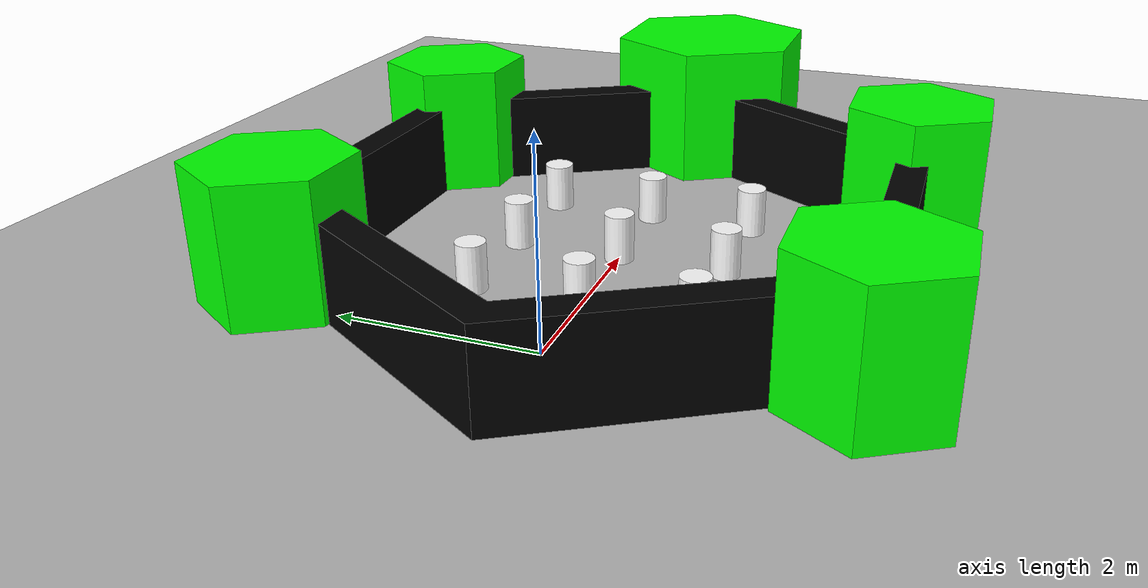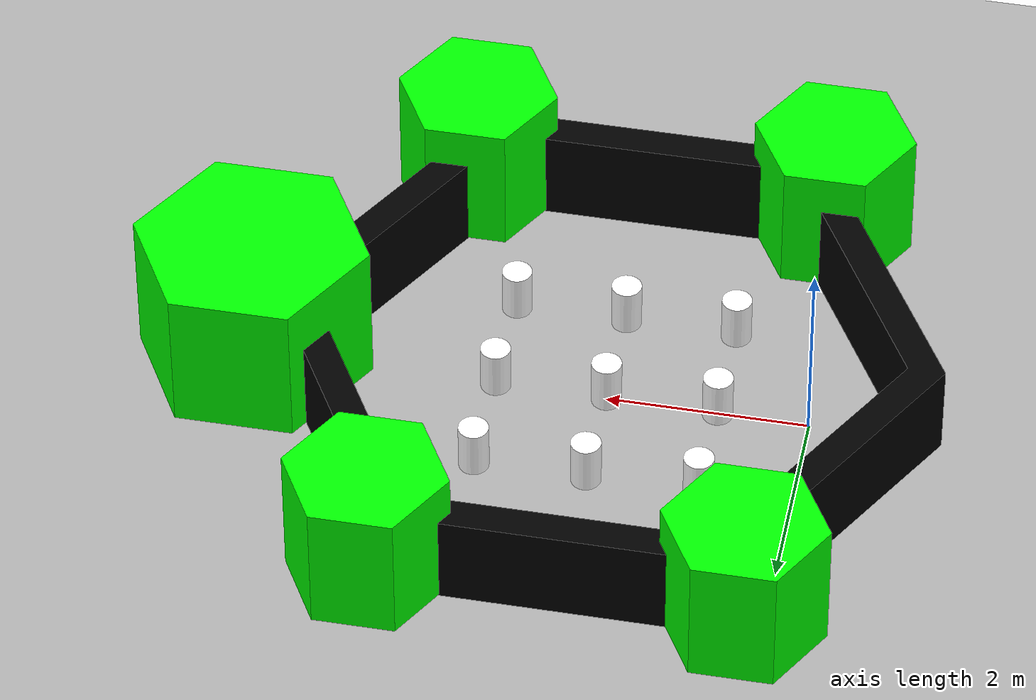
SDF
<sdf version='1.10'>
  <world name='default'>
    <physics type='ode'>
      <real_time_update_rate>1000</real_time_update_rate>
      <max_step_size>0.001</max_step_size>
      <real_time_factor>1</real_time_factor>
      <ode>
        <solver>
          <type>quick</type>
          <iters>150</iters>
          <precon_iters>0</precon_iters>
          <sor>1.3999999999999999</sor>
          <use_dynamic_moi_rescaling>true</use_dynamic_moi_rescaling>
        </solver>
        <constraints>
          <cfm>1.0000000000000001e-05</cfm>
          <erp>0.20000000000000001</erp>
          <contact_max_correcting_vel>2000</contact_max_correcting_vel>
          <contact_surface_layer>0.01</contact_surface_layer>
        </constraints>
      </ode>
    </physics>
    <plugin name='gz::sim::systems::Physics' filename='gz-sim-physics-system'/>
    <plugin name='gz::sim::systems::UserCommands' filename='gz-sim-user-commands-system'/>
    <plugin name='gz::sim::systems::SceneBroadcaster' filename='gz-sim-scene-broadcaster-system'/>
    <plugin name='gz::sim::systems::Sensors' filename='gz-sim-sensors-system'>
      <render_engine>ogre2</render_engine>
    </plugin>
    <plugin name='gz::sim::systems::Imu' filename='gz-sim-imu-system'/>
    <gravity>0 0 -9.8000000000000007</gravity>
    <magnetic_field>5.5644999999999998e-06 2.2875799999999999e-05 -4.2388400000000002e-05</magnetic_field>
    <atmosphere type='adiabatic'/>
    <scene>
      <ambient>0.400000006 0.400000006 0.400000006 1</ambient>
      <background>0.699999988 0.699999988 0.699999988 1</background>
      <shadows>true</shadows>
    </scene>
    <model name='ground_plane'>
      <static>true</static>
      <link name='link'>
        <collision name='collision'>
          <geometry>
            <plane>
              <normal>0 0 1</normal>
              <size>100 100</size>
            </plane>
          </geometry>
          <surface>
            <friction>
              <ode>
                <mu>100</mu>
                <mu2>50</mu2>
              </ode>
            </friction>
            <bounce/>
            <contact/>
          </surface>
        </collision>
        <visual name='visual'>
          <cast_shadows>false</cast_shadows>
          <geometry>
            <plane>
              <normal>0 0 1</normal>
              <size>100 100</size>
            </plane>
          </geometry>
          <material>
            <ambient>0.300000012 0.300000012 0.300000012 1</ambient>
            <diffuse>0.699999988 0.699999988 0.699999988 1</diffuse>
            <specular>0.00999999978 0.00999999978 0.00999999978 1</specular>
          </material>
        </visual>
        <pose>0 0 0 0 0 0</pose>
        <inertial>
          <pose>0 0 0 0 0 0</pose>
          <mass>1</mass>
          <inertia>
            <ixx>1</ixx>
            <ixy>0</ixy>
            <ixz>0</ixz>
            <iyy>1</iyy>
            <iyz>0</iyz>
            <izz>1</izz>
          </inertia>
        </inertial>
        <enable_wind>false</enable_wind>
      </link>
      <pose>0 0 0 0 0 0</pose>
      <self_collide>false</self_collide>
    </model>
    <model name='turtlebot3_world'>
      <static>true</static>
      <model name='ros_symbol'>
        <static>true</static>
        <link name='symbol'>
          <collision name='one_one'>
            <pose>-1.1000000000000001 -1.1000000000000001 0.25 0 0 0</pose>
            <geometry>
              <cylinder>
                <radius>0.14999999999999999</radius>
                <length>0.5</length>
              </cylinder>
            </geometry>
            <max_contacts>10</max_contacts>
            <surface>
              <bounce/>
              <friction>
                <ode/>
              </friction>
              <contact>
                <ode/>
              </contact>
            </surface>
          </collision>
          <visual name='one_one'>
            <pose>-1.1000000000000001 -1.1000000000000001 0.25 0 0 0</pose>
            <geometry>
              <cylinder>
                <radius>0.14999999999999999</radius>
                <length>0.5</length>
              </cylinder>
            </geometry>
            <material>
              <ambient>1 1 1 1</ambient>
              <diffuse>1 1 1 1</diffuse>
              <specular>0.200000003 0.200000003 0.200000003 1</specular>
              <emissive>0 0 0 1</emissive>
            </material>
          </visual>
          <collision name='one_two'>
            <pose>-1.1000000000000001 0 0.25 0 0 0</pose>
            <geometry>
              <cylinder>
                <radius>0.14999999999999999</radius>
                <length>0.5</length>
              </cylinder>
            </geometry>
            <max_contacts>10</max_contacts>
            <surface>
              <bounce/>
              <friction>
                <ode/>
              </friction>
              <contact>
                <ode/>
              </contact>
            </surface>
          </collision>
          <visual name='one_two'>
            <pose>-1.1000000000000001 0 0.25 0 0 0</pose>
            <geometry>
              <cylinder>
                <radius>0.14999999999999999</radius>
                <length>0.5</length>
              </cylinder>
            </geometry>
            <material>
              <ambient>1 1 1 1</ambient>
              <diffuse>1 1 1 1</diffuse>
              <specular>0.200000003 0.200000003 0.200000003 1</specular>
              <emissive>0 0 0 1</emissive>
            </material>
          </visual>
          <collision name='one_three'>
            <pose>-1.1000000000000001 1.1000000000000001 0.25 0 0 0</pose>
            <geometry>
              <cylinder>
                <radius>0.14999999999999999</radius>
                <length>0.5</length>
              </cylinder>
            </geometry>
            <max_contacts>10</max_contacts>
            <surface>
              <bounce/>
              <friction>
                <ode/>
              </friction>
              <contact>
                <ode/>
              </contact>
            </surface>
          </collision>
          <visual name='one_three'>
            <pose>-1.1000000000000001 1.1000000000000001 0.25 0 0 0</pose>
            <geometry>
              <cylinder>
                <radius>0.14999999999999999</radius>
                <length>0.5</length>
              </cylinder>
            </geometry>
            <material>
              <ambient>1 1 1 1</ambient>
              <diffuse>1 1 1 1</diffuse>
              <specular>0.200000003 0.200000003 0.200000003 1</specular>
              <emissive>0 0 0 1</emissive>
            </material>
          </visual>
          <collision name='two_one'>
            <pose>0 -1.1000000000000001 0.25 0 0 0</pose>
            <geometry>
              <cylinder>
                <radius>0.14999999999999999</radius>
                <length>0.5</length>
              </cylinder>
            </geometry>
            <max_contacts>10</max_contacts>
            <surface>
              <bounce/>
              <friction>
                <ode/>
              </friction>
              <contact>
                <ode/>
              </contact>
            </surface>
          </collision>
          <visual name='two_one'>
            <pose>0 -1.1000000000000001 0.25 0 0 0</pose>
            <geometry>
              <cylinder>
                <radius>0.14999999999999999</radius>
                <length>0.5</length>
              </cylinder>
            </geometry>
            <material>
              <ambient>1 1 1 1</ambient>
              <diffuse>1 1 1 1</diffuse>
              <specular>0.200000003 0.200000003 0.200000003 1</specular>
              <emissive>0 0 0 1</emissive>
            </material>
          </visual>
          <collision name='two_two'>
            <pose>0 0 0.25 0 0 0</pose>
            <geometry>
              <cylinder>
                <radius>0.14999999999999999</radius>
                <length>0.5</length>
              </cylinder>
            </geometry>
            <max_contacts>10</max_contacts>
            <surface>
              <bounce/>
              <friction>
                <ode/>
              </friction>
              <contact>
                <ode/>
              </contact>
            </surface>
          </collision>
          <visual name='two_two'>
            <pose>0 0 0.25 0 0 0</pose>
            <geometry>
              <cylinder>
                <radius>0.14999999999999999</radius>
                <length>0.5</length>
              </cylinder>
            </geometry>
            <material>
              <ambient>1 1 1 1</ambient>
              <diffuse>1 1 1 1</diffuse>
              <specular>0.200000003 0.200000003 0.200000003 1</specular>
              <emissive>0 0 0 1</emissive>
            </material>
          </visual>
          <collision name='two_three'>
            <pose>0 1.1000000000000001 0.25 0 0 0</pose>
            <geometry>
              <cylinder>
                <radius>0.14999999999999999</radius>
                <length>0.5</length>
              </cylinder>
            </geometry>
            <max_contacts>10</max_contacts>
            <surface>
              <bounce/>
              <friction>
                <ode/>
              </friction>
              <contact>
                <ode/>
              </contact>
            </surface>
          </collision>
          <visual name='two_three'>
            <pose>0 1.1000000000000001 0.25 0 0 0</pose>
            <geometry>
              <cylinder>
                <radius>0.14999999999999999</radius>
                <length>0.5</length>
              </cylinder>
            </geometry>
            <material>
              <ambient>1 1 1 1</ambient>
              <diffuse>1 1 1 1</diffuse>
              <specular>0.200000003 0.200000003 0.200000003 1</specular>
              <emissive>0 0 0 1</emissive>
            </material>
          </visual>
          <collision name='three_one'>
            <pose>1.1000000000000001 -1.1000000000000001 0.25 0 0 0</pose>
            <geometry>
              <cylinder>
                <radius>0.14999999999999999</radius>
                <length>0.5</length>
              </cylinder>
            </geometry>
            <max_contacts>10</max_contacts>
            <surface>
              <bounce/>
              <friction>
                <ode/>
              </friction>
              <contact>
                <ode/>
              </contact>
            </surface>
          </collision>
          <visual name='three_one'>
            <pose>1.1000000000000001 -1.1000000000000001 0.25 0 0 0</pose>
            <geometry>
              <cylinder>
                <radius>0.14999999999999999</radius>
                <length>0.5</length>
              </cylinder>
            </geometry>
            <material>
              <ambient>1 1 1 1</ambient>
              <diffuse>1 1 1 1</diffuse>
              <specular>0.200000003 0.200000003 0.200000003 1</specular>
              <emissive>0 0 0 1</emissive>
            </material>
          </visual>
          <collision name='three_two'>
            <pose>1.1000000000000001 0 0.25 0 0 0</pose>
            <geometry>
              <cylinder>
                <radius>0.14999999999999999</radius>
                <length>0.5</length>
              </cylinder>
            </geometry>
            <max_contacts>10</max_contacts>
            <surface>
              <bounce/>
              <friction>
                <ode/>
              </friction>
              <contact>
                <ode/>
              </contact>
            </surface>
          </collision>
          <visual name='three_two'>
            <pose>1.1000000000000001 0 0.25 0 0 0</pose>
            <geometry>
              <cylinder>
                <radius>0.14999999999999999</radius>
                <length>0.5</length>
              </cylinder>
            </geometry>
            <material>
              <ambient>1 1 1 1</ambient>
              <diffuse>1 1 1 1</diffuse>
              <specular>0.200000003 0.200000003 0.200000003 1</specular>
              <emissive>0 0 0 1</emissive>
            </material>
          </visual>
          <collision name='three_three'>
            <pose>1.1000000000000001 1.1000000000000001 0.25 0 0 0</pose>
            <geometry>
              <cylinder>
                <radius>0.14999999999999999</radius>
                <length>0.5</length>
              </cylinder>
            </geometry>
            <max_contacts>10</max_contacts>
            <surface>
              <bounce/>
              <friction>
                <ode/>
              </friction>
              <contact>
                <ode/>
              </contact>
            </surface>
          </collision>
          <visual name='three_three'>
            <pose>1.1000000000000001 1.1000000000000001 0.25 0 0 0</pose>
            <geometry>
              <cylinder>
                <radius>0.14999999999999999</radius>
                <length>0.5</length>
              </cylinder>
            </geometry>
            <material>
              <ambient>1 1 1 1</ambient>
              <diffuse>1 1 1 1</diffuse>
              <specular>0.200000003 0.200000003 0.200000003 1</specular>
              <emissive>0 0 0 1</emissive>
            </material>
          </visual>
          <collision name='head'>
            <pose>3.5 0 -0.5 0 0 0</pose>
            <geometry>
              <mesh>
                <uri>model://turtlebot3_world/meshes/hexagon.dae</uri>
                <scale>0.80000000000000004 0.80000000000000004 0.80000000000000004</scale>
              </mesh>
            </geometry>
            <max_contacts>10</max_contacts>
            <surface>
              <bounce/>
              <friction>
                <ode/>
              </friction>
              <contact>
                <ode/>
              </contact>
            </surface>
          </collision>
          <visual name='head'>
            <pose>3.5 0 -0.5 0 0 0</pose>
            <geometry>
              <mesh>
                <uri>model://turtlebot3_world/meshes/hexagon.dae</uri>
                <scale>0.80000000000000004 0.80000000000000004 0.80000000000000004</scale>
              </mesh>
            </geometry>
            <material>
              <ambient>0 1 0 1</ambient>
              <diffuse>0 1 0 1</diffuse>
              <specular>0.200000003 0.200000003 0.200000003 1</specular>
              <emissive>0 0 0 1</emissive>
            </material>
          </visual>
          <collision name='left_hand'>
            <pose>1.8 2.7000000000000002 0 0 0 0</pose>
            <geometry>
              <mesh>
                <uri>model://turtlebot3_world/meshes/hexagon.dae</uri>
                <scale>0.55000000000000004 0.55000000000000004 0.55000000000000004</scale>
              </mesh>
            </geometry>
            <max_contacts>10</max_contacts>
            <surface>
              <bounce/>
              <friction>
                <ode/>
              </friction>
              <contact>
                <ode/>
              </contact>
            </surface>
          </collision>
          <visual name='left_hand'>
            <pose>1.8 2.7000000000000002 0 0 0 0</pose>
            <geometry>
              <mesh>
                <uri>model://turtlebot3_world/meshes/hexagon.dae</uri>
                <scale>0.55000000000000004 0.55000000000000004 0.55000000000000004</scale>
              </mesh>
            </geometry>
            <material>
              <ambient>0 1 0 1</ambient>
              <diffuse>0 1 0 1</diffuse>
              <specular>0.200000003 0.200000003 0.200000003 1</specular>
              <emissive>0 0 0 1</emissive>
            </material>
          </visual>
          <collision name='right_hand'>
            <pose>1.8 -2.7000000000000002 0 0 0 0</pose>
            <geometry>
              <mesh>
                <uri>model://turtlebot3_world/meshes/hexagon.dae</uri>
                <scale>0.55000000000000004 0.55000000000000004 0.55000000000000004</scale>
              </mesh>
            </geometry>
            <max_contacts>10</max_contacts>
            <surface>
              <bounce/>
              <friction>
                <ode/>
              </friction>
              <contact>
                <ode/>
              </contact>
            </surface>
          </collision>
          <visual name='right_hand'>
            <pose>1.8 -2.7000000000000002 0 0 0 0</pose>
            <geometry>
              <mesh>
                <uri>model://turtlebot3_world/meshes/hexagon.dae</uri>
                <scale>0.55000000000000004 0.55000000000000004 0.55000000000000004</scale>
              </mesh>
            </geometry>
            <material>
              <ambient>0 1 0 1</ambient>
              <diffuse>0 1 0 1</diffuse>
              <specular>0.200000003 0.200000003 0.200000003 1</specular>
              <emissive>0 0 0 1</emissive>
            </material>
          </visual>
          <collision name='left_foot'>
            <pose>-1.8 2.7000000000000002 0 0 0 0</pose>
            <geometry>
              <mesh>
                <uri>model://turtlebot3_world/meshes/hexagon.dae</uri>
                <scale>0.55000000000000004 0.55000000000000004 0.55000000000000004</scale>
              </mesh>
            </geometry>
            <max_contacts>10</max_contacts>
            <surface>
              <bounce/>
              <friction>
                <ode/>
              </friction>
              <contact>
                <ode/>
              </contact>
            </surface>
          </collision>
          <visual name='left_foot'>
            <pose>-1.8 2.7000000000000002 0 0 0 0</pose>
            <geometry>
              <mesh>
                <uri>model://turtlebot3_world/meshes/hexagon.dae</uri>
                <scale>0.55000000000000004 0.55000000000000004 0.55000000000000004</scale>
              </mesh>
            </geometry>
            <material>
              <ambient>0 1 0 1</ambient>
              <diffuse>0 1 0 1</diffuse>
              <specular>0.200000003 0.200000003 0.200000003 1</specular>
              <emissive>0 0 0 1</emissive>
            </material>
          </visual>
          <collision name='right_foot'>
            <pose>-1.8 -2.7000000000000002 0 0 0 0</pose>
            <geometry>
              <mesh>
                <uri>model://turtlebot3_world/meshes/hexagon.dae</uri>
                <scale>0.55000000000000004 0.55000000000000004 0.55000000000000004</scale>
              </mesh>
            </geometry>
            <max_contacts>10</max_contacts>
            <surface>
              <bounce/>
              <friction>
                <ode/>
              </friction>
              <contact>
                <ode/>
              </contact>
            </surface>
          </collision>
          <visual name='right_foot'>
            <pose>-1.8 -2.7000000000000002 0 0 0 0</pose>
            <geometry>
              <mesh>
                <uri>model://turtlebot3_world/meshes/hexagon.dae</uri>
                <scale>0.55000000000000004 0.55000000000000004 0.55000000000000004</scale>
              </mesh>
            </geometry>
            <material>
              <ambient>0 1 0 1</ambient>
              <diffuse>0 1 0 1</diffuse>
              <specular>0.200000003 0.200000003 0.200000003 1</specular>
              <emissive>0 0 0 1</emissive>
            </material>
          </visual>
          <collision name='body'>
            <pose>0 0 -0.29999999999999999 0 0 -1.5708</pose>
            <geometry>
              <mesh>
                <uri>model://turtlebot3_world/meshes/wall.dae</uri>
                <scale>0.25 0.25 0.25</scale>
              </mesh>
            </geometry>
            <max_contacts>10</max_contacts>
            <surface>
              <bounce/>
              <friction>
                <ode/>
              </friction>
              <contact>
                <ode/>
              </contact>
            </surface>
          </collision>
          <visual name='body'>
            <pose>0 0 -0.29999999999999999 0 0 -1.5708</pose>
            <geometry>
              <mesh>
                <uri>model://turtlebot3_world/meshes/wall.dae</uri>
                <scale>0.25 0.25 0.25</scale>
              </mesh>
            </geometry>
            <material>
              <ambient>0 0 0 1</ambient>
              <diffuse>0 0 0 1</diffuse>
              <specular>0 0 0 1</specular>
              <emissive>0 0 0 1</emissive>
            </material>
          </visual>
        </link>
      </model>
      <pose>2 0 0 0 0 0</pose>
      <self_collide>false</self_collide>
    </model>
    <light name='sun' type='directional'>
      <pose>0 0 10 0 0 0</pose>
      <cast_shadows>true</cast_shadows>
      <intensity>1</intensity>
      <direction>-0.5 0.10000000000000001 -0.90000000000000002</direction>
      <diffuse>0.800000012 0.800000012 0.800000012 1</diffuse>
      <specular>0.200000003 0.200000003 0.200000003 1</specular>
      <attenuation>
        <range>1000</range>
        <linear>0.01</linear>
        <constant>0.90000000000000002</constant>
        <quadratic>0.001</quadratic>
      </attenuation>
      <spot>
        <inner_angle>0</inner_angle>
        <outer_angle>0</outer_angle>
        <falloff>0</falloff>
      </spot>
    </light>
  </world>
</sdf>
